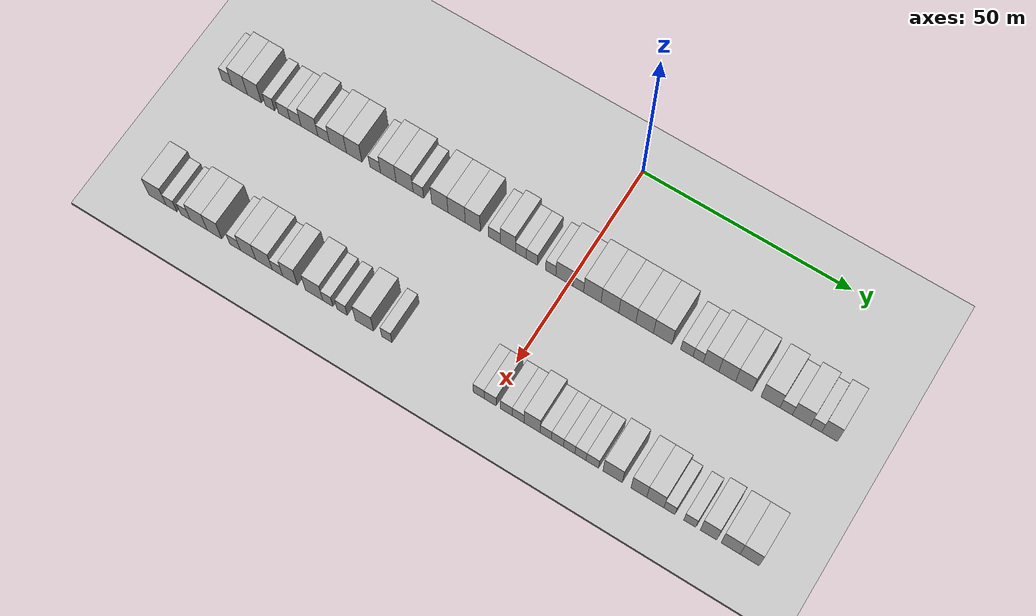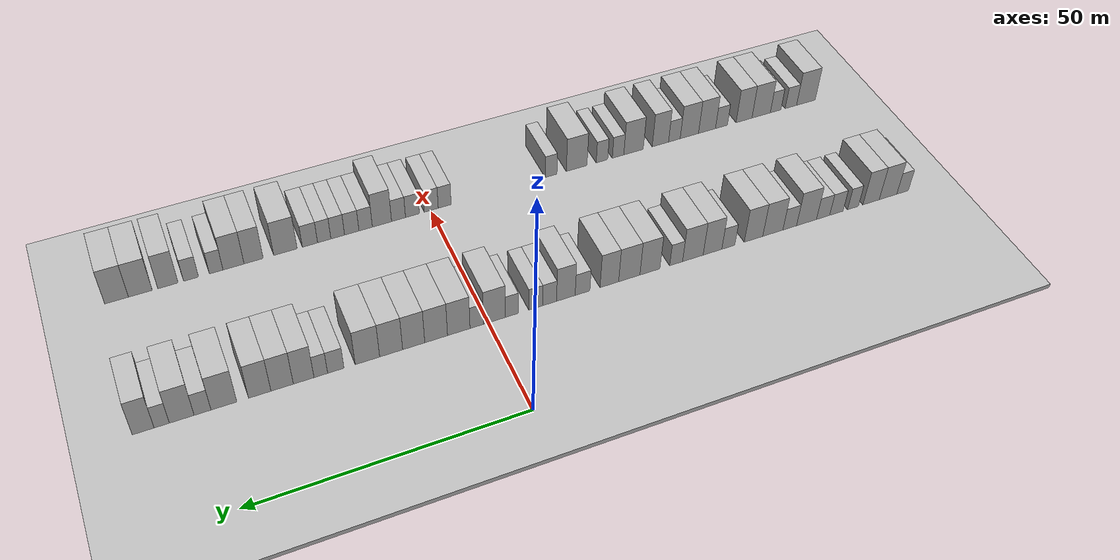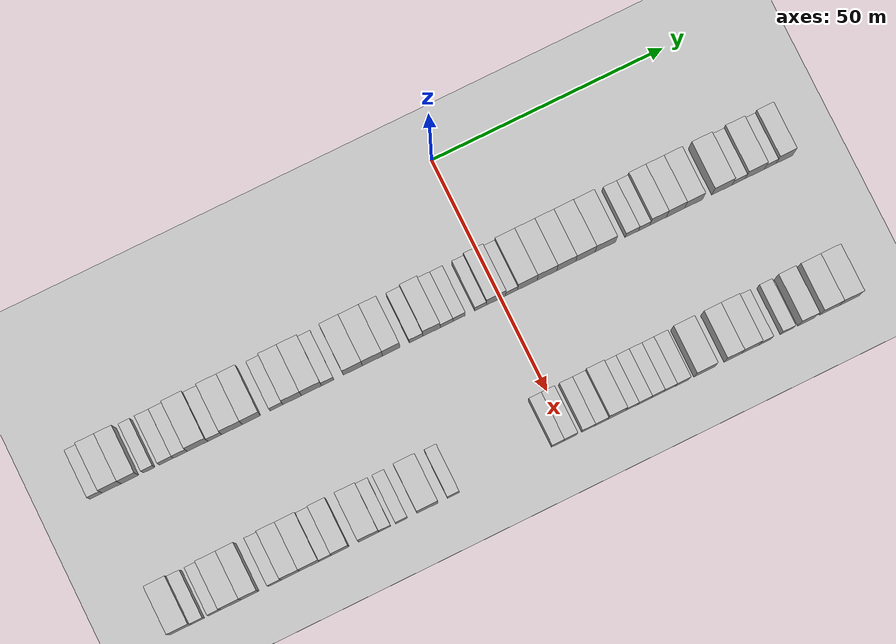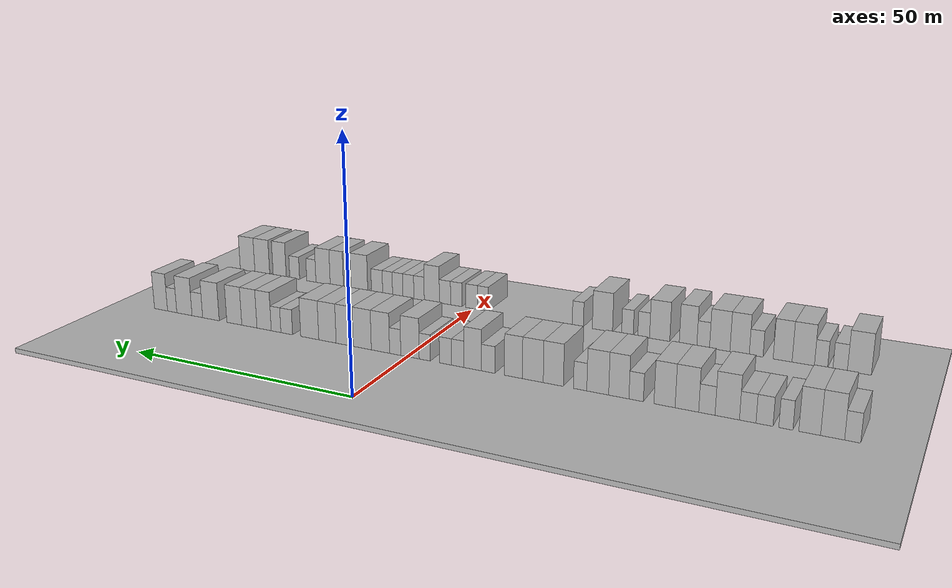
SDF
<sdf version="1.6">
 <world name="default">
  <include><name>ground_plane_1</name><uri>model://HANNAS_ground_plane</uri></include>
  <include>
   <name>ground_plane_2</name>
   <uri>model://HANNAS_ground_plane</uri>
   <pose>100 0 0  0 0 0</pose>
  </include>
  <model name="building_36">
   <static>1</static>
   <pose>25.0000 -86.0465 0 0.000000 0.000000 0.000000</pose>
   <link name="link">
    <pose>0 0 3.00 0 0 0</pose>
    <collision name="collision"><geometry><box><size>10.0000 2.6405 6.0000</size></box></geometry></collision>
    <visual name="visual">
     <cast_shadows>0</cast_shadows>
     <geometry><box><size>10.0000 2.6405 6.0000</size></box></geometry>
     <material>
      <script>
       <uri>model://HANNAS_wall/materials/scripts</uri>
       <uri>model://HANNAS_wall/materials/textures</uri>
       <name>vrc/HANNAS_wall</name>
      </script>
     </material>
    </visual>
   </link>
  </model>
  <model name="building_37">
   <static>1</static>
   <pose>25.0000 -82.7317 0 0.000000 0.000000 0.000000</pose>
   <link name="link">
    <pose>0 0 4.50 0 0 0</pose>
    <collision name="collision"><geometry><box><size>10.0000 3.9891 9.0000</size></box></geometry></collision>
    <visual name="visual">
     <cast_shadows>0</cast_shadows>
     <geometry><box><size>10.0000 3.9891 9.0000</size></box></geometry>
     <material>
      <script>
       <uri>model://HANNAS_wall/materials/scripts</uri>
       <uri>model://HANNAS_wall/materials/textures</uri>
       <name>vrc/HANNAS_wall</name>
      </script>
     </material>
    </visual>
   </link>
  </model>
  <model name="building_38">
   <static>1</static>
   <pose>25.0000 -78.8998 0 0.000000 0.000000 0.000000</pose>
   <link name="link">
    <pose>0 0 4.50 0 0 0</pose>
    <collision name="collision"><geometry><box><size>10.0000 3.6748 9.0000</size></box></geometry></collision>
    <visual name="visual">
     <cast_shadows>0</cast_shadows>
     <geometry><box><size>10.0000 3.6748 9.0000</size></box></geometry>
     <material>
      <script>
       <uri>model://HANNAS_wall/materials/scripts</uri>
       <uri>model://HANNAS_wall/materials/textures</uri>
       <name>vrc/HANNAS_wall</name>
      </script>
     </material>
    </visual>
   </link>
  </model>
  <model name="building_39">
   <static>1</static>
   <pose>25.0000 -74.8521 0 0.000000 0.000000 0.000000</pose>
   <link name="link">
    <pose>0 0 3.00 0 0 0</pose>
    <collision name="collision"><geometry><box><size>10.0000 2.4206 6.0000</size></box></geometry></collision>
    <visual name="visual">
     <cast_shadows>0</cast_shadows>
     <geometry><box><size>10.0000 2.4206 6.0000</size></box></geometry>
     <material>
      <script>
       <uri>model://HANNAS_wall/materials/scripts</uri>
       <uri>model://HANNAS_wall/materials/textures</uri>
       <name>vrc/HANNAS_wall</name>
      </script>
     </material>
    </visual>
   </link>
  </model>
  <model name="building_40">
   <static>1</static>
   <pose>25.0000 -71.1641 0 0.000000 0.000000 0.000000</pose>
   <link name="link">
    <pose>0 0 3.00 0 0 0</pose>
    <collision name="collision"><geometry><box><size>10.0000 2.9554 6.0000</size></box></geometry></collision>
    <visual name="visual">
     <cast_shadows>0</cast_shadows>
     <geometry><box><size>10.0000 2.9554 6.0000</size></box></geometry>
     <material>
      <script>
       <uri>model://HANNAS_wall/materials/scripts</uri>
       <uri>model://HANNAS_wall/materials/textures</uri>
       <name>vrc/HANNAS_wall</name>
      </script>
     </material>
    </visual>
   </link>
  </model>
  <model name="building_41">
   <static>1</static>
   <pose>25.0000 -68.2301 0 0.000000 0.000000 0.000000</pose>
   <link name="link">
    <pose>0 0 3.00 0 0 0</pose>
    <collision name="collision"><geometry><box><size>10.0000 2.9125 6.0000</size></box></geometry></collision>
    <visual name="visual">
     <cast_shadows>0</cast_shadows>
     <geometry><box><size>10.0000 2.9125 6.0000</size></box></geometry>
     <material>
      <script>
       <uri>model://HANNAS_wall/materials/scripts</uri>
       <uri>model://HANNAS_wall/materials/textures</uri>
       <name>vrc/HANNAS_wall</name>
      </script>
     </material>
    </visual>
   </link>
  </model>
  <model name="building_42">
   <static>1</static>
   <pose>25.0000 -64.6002 0 0.000000 0.000000 0.000000</pose>
   <link name="link">
    <pose>0 0 4.50 0 0 0</pose>
    <collision name="collision"><geometry><box><size>10.0000 4.3473 9.0000</size></box></geometry></collision>
    <visual name="visual">
     <cast_shadows>0</cast_shadows>
     <geometry><box><size>10.0000 4.3473 9.0000</size></box></geometry>
     <material>
      <script>
       <uri>model://HANNAS_wall/materials/scripts</uri>
       <uri>model://HANNAS_wall/materials/textures</uri>
       <name>vrc/HANNAS_wall</name>
      </script>
     </material>
    </visual>
   </link>
  </model>
  <model name="building_43">
   <static>1</static>
   <pose>25.0000 -60.9436 0 0.000000 0.000000 0.000000</pose>
   <link name="link">
    <pose>0 0 3.00 0 0 0</pose>
    <collision name="collision"><geometry><box><size>10.0000 2.9658 6.0000</size></box></geometry></collision>
    <visual name="visual">
     <cast_shadows>0</cast_shadows>
     <geometry><box><size>10.0000 2.9658 6.0000</size></box></geometry>
     <material>
      <script>
       <uri>model://HANNAS_wall/materials/scripts</uri>
       <uri>model://HANNAS_wall/materials/textures</uri>
       <name>vrc/HANNAS_wall</name>
      </script>
     </material>
    </visual>
   </link>
  </model>
  <model name="building_44">
   <static>1</static>
   <pose>25.0000 -57.2995 0 0.000000 0.000000 0.000000</pose>
   <link name="link">
    <pose>0 0 4.50 0 0 0</pose>
    <collision name="collision"><geometry><box><size>10.0000 4.3224 9.0000</size></box></geometry></collision>
    <visual name="visual">
     <cast_shadows>0</cast_shadows>
     <geometry><box><size>10.0000 4.3224 9.0000</size></box></geometry>
     <material>
      <script>
       <uri>model://HANNAS_wall/materials/scripts</uri>
       <uri>model://HANNAS_wall/materials/textures</uri>
       <name>vrc/HANNAS_wall</name>
      </script>
     </material>
    </visual>
   </link>
  </model>
  <model name="building_45">
   <static>1</static>
   <pose>25.0000 -53.1680 0 0.000000 0.000000 0.000000</pose>
   <link name="link">
    <pose>0 0 4.50 0 0 0</pose>
    <collision name="collision"><geometry><box><size>10.0000 3.9408 9.0000</size></box></geometry></collision>
    <visual name="visual">
     <cast_shadows>0</cast_shadows>
     <geometry><box><size>10.0000 3.9408 9.0000</size></box></geometry>
     <material>
      <script>
       <uri>model://HANNAS_wall/materials/scripts</uri>
       <uri>model://HANNAS_wall/materials/textures</uri>
       <name>vrc/HANNAS_wall</name>
      </script>
     </material>
    </visual>
   </link>
  </model>
  <model name="building_46">
   <static>1</static>
   <pose>25.0000 -47.8245 0 0.000000 0.000000 0.000000</pose>
   <link name="link">
    <pose>0 0 3.00 0 0 0</pose>
    <collision name="collision"><geometry><box><size>10.0000 2.7462 6.0000</size></box></geometry></collision>
    <visual name="visual">
     <cast_shadows>0</cast_shadows>
     <geometry><box><size>10.0000 2.7462 6.0000</size></box></geometry>
     <material>
      <script>
       <uri>model://HANNAS_wall/materials/scripts</uri>
       <uri>model://HANNAS_wall/materials/textures</uri>
       <name>vrc/HANNAS_wall</name>
      </script>
     </material>
    </visual>
   </link>
  </model>
  <model name="building_47">
   <static>1</static>
   <pose>25.0000 -44.4998 0 0.000000 0.000000 0.000000</pose>
   <link name="link">
    <pose>0 0 4.50 0 0 0</pose>
    <collision name="collision"><geometry><box><size>10.0000 3.9032 9.0000</size></box></geometry></collision>
    <visual name="visual">
     <cast_shadows>0</cast_shadows>
     <geometry><box><size>10.0000 3.9032 9.0000</size></box></geometry>
     <material>
      <script>
       <uri>model://HANNAS_wall/materials/scripts</uri>
       <uri>model://HANNAS_wall/materials/textures</uri>
       <name>vrc/HANNAS_wall</name>
      </script>
     </material>
    </visual>
   </link>
  </model>
  <model name="building_48">
   <static>1</static>
   <pose>25.0000 -40.4102 0 0.000000 0.000000 0.000000</pose>
   <link name="link">
    <pose>0 0 4.50 0 0 0</pose>
    <collision name="collision"><geometry><box><size>10.0000 4.2760 9.0000</size></box></geometry></collision>
    <visual name="visual">
     <cast_shadows>0</cast_shadows>
     <geometry><box><size>10.0000 4.2760 9.0000</size></box></geometry>
     <material>
      <script>
       <uri>model://HANNAS_wall/materials/scripts</uri>
       <uri>model://HANNAS_wall/materials/textures</uri>
       <name>vrc/HANNAS_wall</name>
      </script>
     </material>
    </visual>
   </link>
  </model>
  <model name="building_49">
   <static>1</static>
   <pose>25.0000 -36.9497 0 0.000000 0.000000 0.000000</pose>
   <link name="link">
    <pose>0 0 3.00 0 0 0</pose>
    <collision name="collision"><geometry><box><size>10.0000 2.6450 6.0000</size></box></geometry></collision>
    <visual name="visual">
     <cast_shadows>0</cast_shadows>
     <geometry><box><size>10.0000 2.6450 6.0000</size></box></geometry>
     <material>
      <script>
       <uri>model://HANNAS_wall/materials/scripts</uri>
       <uri>model://HANNAS_wall/materials/textures</uri>
       <name>vrc/HANNAS_wall</name>
      </script>
     </material>
    </visual>
   </link>
  </model>
  <model name="building_50">
   <static>1</static>
   <pose>25.0000 -31.5920 0 0.000000 0.000000 0.000000</pose>
   <link name="link">
    <pose>0 0 4.50 0 0 0</pose>
    <collision name="collision"><geometry><box><size>10.0000 4.0703 9.0000</size></box></geometry></collision>
    <visual name="visual">
     <cast_shadows>0</cast_shadows>
     <geometry><box><size>10.0000 4.0703 9.0000</size></box></geometry>
     <material>
      <script>
       <uri>model://HANNAS_wall/materials/scripts</uri>
       <uri>model://HANNAS_wall/materials/textures</uri>
       <name>vrc/HANNAS_wall</name>
      </script>
     </material>
    </visual>
   </link>
  </model>
  <model name="building_51">
   <static>1</static>
   <pose>25.0000 -27.4132 0 0.000000 0.000000 0.000000</pose>
   <link name="link">
    <pose>0 0 4.50 0 0 0</pose>
    <collision name="collision"><geometry><box><size>10.0000 4.2873 9.0000</size></box></geometry></collision>
    <visual name="visual">
     <cast_shadows>0</cast_shadows>
     <geometry><box><size>10.0000 4.2873 9.0000</size></box></geometry>
     <material>
      <script>
       <uri>model://HANNAS_wall/materials/scripts</uri>
       <uri>model://HANNAS_wall/materials/textures</uri>
       <name>vrc/HANNAS_wall</name>
      </script>
     </material>
    </visual>
   </link>
  </model>
  <model name="building_52">
   <static>1</static>
   <pose>25.0000 -23.4072 0 0.000000 0.000000 0.000000</pose>
   <link name="link">
    <pose>0 0 4.50 0 0 0</pose>
    <collision name="collision"><geometry><box><size>10.0000 3.7247 9.0000</size></box></geometry></collision>
    <visual name="visual">
     <cast_shadows>0</cast_shadows>
     <geometry><box><size>10.0000 3.7247 9.0000</size></box></geometry>
     <material>
      <script>
       <uri>model://HANNAS_wall/materials/scripts</uri>
       <uri>model://HANNAS_wall/materials/textures</uri>
       <name>vrc/HANNAS_wall</name>
      </script>
     </material>
    </visual>
   </link>
  </model>
  <model name="building_53">
   <static>1</static>
   <pose>25.0000 -18.0842 0 0.000000 0.000000 0.000000</pose>
   <link name="link">
    <pose>0 0 3.00 0 0 0</pose>
    <collision name="collision"><geometry><box><size>10.0000 2.9214 6.0000</size></box></geometry></collision>
    <visual name="visual">
     <cast_shadows>0</cast_shadows>
     <geometry><box><size>10.0000 2.9214 6.0000</size></box></geometry>
     <material>
      <script>
       <uri>model://HANNAS_wall/materials/scripts</uri>
       <uri>model://HANNAS_wall/materials/textures</uri>
       <name>vrc/HANNAS_wall</name>
      </script>
     </material>
    </visual>
   </link>
  </model>
  <model name="building_54">
   <static>1</static>
   <pose>25.0000 -14.7906 0 0.000000 0.000000 0.000000</pose>
   <link name="link">
    <pose>0 0 4.50 0 0 0</pose>
    <collision name="collision"><geometry><box><size>10.0000 3.6657 9.0000</size></box></geometry></collision>
    <visual name="visual">
     <cast_shadows>0</cast_shadows>
     <geometry><box><size>10.0000 3.6657 9.0000</size></box></geometry>
     <material>
      <script>
       <uri>model://HANNAS_wall/materials/scripts</uri>
       <uri>model://HANNAS_wall/materials/textures</uri>
       <name>vrc/HANNAS_wall</name>
      </script>
     </material>
    </visual>
   </link>
  </model>
  <model name="building_55">
   <static>1</static>
   <pose>25.0000 -11.6053 0 0.000000 0.000000 0.000000</pose>
   <link name="link">
    <pose>0 0 3.00 0 0 0</pose>
    <collision name="collision"><geometry><box><size>10.0000 2.7048 6.0000</size></box></geometry></collision>
    <visual name="visual">
     <cast_shadows>0</cast_shadows>
     <geometry><box><size>10.0000 2.7048 6.0000</size></box></geometry>
     <material>
      <script>
       <uri>model://HANNAS_wall/materials/scripts</uri>
       <uri>model://HANNAS_wall/materials/textures</uri>
       <name>vrc/HANNAS_wall</name>
      </script>
     </material>
    </visual>
   </link>
  </model>
  <model name="building_56">
   <static>1</static>
   <pose>25.0000 -8.9173 0 0.000000 0.000000 0.000000</pose>
   <link name="link">
    <pose>0 0 3.00 0 0 0</pose>
    <collision name="collision"><geometry><box><size>10.0000 2.6713 6.0000</size></box></geometry></collision>
    <visual name="visual">
     <cast_shadows>0</cast_shadows>
     <geometry><box><size>10.0000 2.6713 6.0000</size></box></geometry>
     <material>
      <script>
       <uri>model://HANNAS_wall/materials/scripts</uri>
       <uri>model://HANNAS_wall/materials/textures</uri>
       <name>vrc/HANNAS_wall</name>
      </script>
     </material>
    </visual>
   </link>
  </model>
  <model name="building_57">
   <static>1</static>
   <pose>25.0000 -4.3405 0 0.000000 0.000000 0.000000</pose>
   <link name="link">
    <pose>0 0 3.00 0 0 0</pose>
    <collision name="collision"><geometry><box><size>10.0000 2.4823 6.0000</size></box></geometry></collision>
    <visual name="visual">
     <cast_shadows>0</cast_shadows>
     <geometry><box><size>10.0000 2.4823 6.0000</size></box></geometry>
     <material>
      <script>
       <uri>model://HANNAS_wall/materials/scripts</uri>
       <uri>model://HANNAS_wall/materials/textures</uri>
       <name>vrc/HANNAS_wall</name>
      </script>
     </material>
    </visual>
   </link>
  </model>
  <model name="building_58">
   <static>1</static>
   <pose>25.0000 -1.0252 0 0.000000 0.000000 0.000000</pose>
   <link name="link">
    <pose>0 0 4.50 0 0 0</pose>
    <collision name="collision"><geometry><box><size>10.0000 4.1484 9.0000</size></box></geometry></collision>
    <visual name="visual">
     <cast_shadows>0</cast_shadows>
     <geometry><box><size>10.0000 4.1484 9.0000</size></box></geometry>
     <material>
      <script>
       <uri>model://HANNAS_wall/materials/scripts</uri>
       <uri>model://HANNAS_wall/materials/textures</uri>
       <name>vrc/HANNAS_wall</name>
      </script>
     </material>
    </visual>
   </link>
  </model>
  <model name="building_59">
   <static>1</static>
   <pose>25.0000 2.3257 0 0.000000 0.000000 0.000000</pose>
   <link name="link">
    <pose>0 0 3.00 0 0 0</pose>
    <collision name="collision"><geometry><box><size>10.0000 2.5534 6.0000</size></box></geometry></collision>
    <visual name="visual">
     <cast_shadows>0</cast_shadows>
     <geometry><box><size>10.0000 2.5534 6.0000</size></box></geometry>
     <material>
      <script>
       <uri>model://HANNAS_wall/materials/scripts</uri>
       <uri>model://HANNAS_wall/materials/textures</uri>
       <name>vrc/HANNAS_wall</name>
      </script>
     </material>
    </visual>
   </link>
  </model>
  <model name="building_60">
   <static>1</static>
   <pose>25.0000 5.7046 0 0.000000 0.000000 0.000000</pose>
   <link name="link">
    <pose>0 0 4.50 0 0 0</pose>
    <collision name="collision"><geometry><box><size>10.0000 4.2045 9.0000</size></box></geometry></collision>
    <visual name="visual">
     <cast_shadows>0</cast_shadows>
     <geometry><box><size>10.0000 4.2045 9.0000</size></box></geometry>
     <material>
      <script>
       <uri>model://HANNAS_wall/materials/scripts</uri>
       <uri>model://HANNAS_wall/materials/textures</uri>
       <name>vrc/HANNAS_wall</name>
      </script>
     </material>
    </visual>
   </link>
  </model>
  <model name="building_61">
   <static>1</static>
   <pose>25.0000 9.9166 0 0.000000 0.000000 0.000000</pose>
   <link name="link">
    <pose>0 0 4.50 0 0 0</pose>
    <collision name="collision"><geometry><box><size>10.0000 4.2195 9.0000</size></box></geometry></collision>
    <visual name="visual">
     <cast_shadows>0</cast_shadows>
     <geometry><box><size>10.0000 4.2195 9.0000</size></box></geometry>
     <material>
      <script>
       <uri>model://HANNAS_wall/materials/scripts</uri>
       <uri>model://HANNAS_wall/materials/textures</uri>
       <name>vrc/HANNAS_wall</name>
      </script>
     </material>
    </visual>
   </link>
  </model>
  <model name="building_62">
   <static>1</static>
   <pose>25.0000 14.0541 0 0.000000 0.000000 0.000000</pose>
   <link name="link">
    <pose>0 0 4.50 0 0 0</pose>
    <collision name="collision"><geometry><box><size>10.0000 4.0553 9.0000</size></box></geometry></collision>
    <visual name="visual">
     <cast_shadows>0</cast_shadows>
     <geometry><box><size>10.0000 4.0553 9.0000</size></box></geometry>
     <material>
      <script>
       <uri>model://HANNAS_wall/materials/scripts</uri>
       <uri>model://HANNAS_wall/materials/textures</uri>
       <name>vrc/HANNAS_wall</name>
      </script>
     </material>
    </visual>
   </link>
  </model>
  <model name="building_63">
   <static>1</static>
   <pose>25.0000 18.1746 0 0.000000 0.000000 0.000000</pose>
   <link name="link">
    <pose>0 0 4.50 0 0 0</pose>
    <collision name="collision"><geometry><box><size>10.0000 4.1857 9.0000</size></box></geometry></collision>
    <visual name="visual">
     <cast_shadows>0</cast_shadows>
     <geometry><box><size>10.0000 4.1857 9.0000</size></box></geometry>
     <material>
      <script>
       <uri>model://HANNAS_wall/materials/scripts</uri>
       <uri>model://HANNAS_wall/materials/textures</uri>
       <name>vrc/HANNAS_wall</name>
      </script>
     </material>
    </visual>
   </link>
  </model>
  <model name="building_64">
   <static>1</static>
   <pose>25.0000 22.4726 0 0.000000 0.000000 0.000000</pose>
   <link name="link">
    <pose>0 0 4.50 0 0 0</pose>
    <collision name="collision"><geometry><box><size>10.0000 4.4105 9.0000</size></box></geometry></collision>
    <visual name="visual">
     <cast_shadows>0</cast_shadows>
     <geometry><box><size>10.0000 4.4105 9.0000</size></box></geometry>
     <material>
      <script>
       <uri>model://HANNAS_wall/materials/scripts</uri>
       <uri>model://HANNAS_wall/materials/textures</uri>
       <name>vrc/HANNAS_wall</name>
      </script>
     </material>
    </visual>
   </link>
  </model>
  <model name="building_65">
   <static>1</static>
   <pose>25.0000 28.1322 0 0.000000 0.000000 0.000000</pose>
   <link name="link">
    <pose>0 0 3.00 0 0 0</pose>
    <collision name="collision"><geometry><box><size>10.0000 2.9087 6.0000</size></box></geometry></collision>
    <visual name="visual">
     <cast_shadows>0</cast_shadows>
     <geometry><box><size>10.0000 2.9087 6.0000</size></box></geometry>
     <material>
      <script>
       <uri>model://HANNAS_wall/materials/scripts</uri>
       <uri>model://HANNAS_wall/materials/textures</uri>
       <name>vrc/HANNAS_wall</name>
      </script>
     </material>
    </visual>
   </link>
  </model>
  <model name="building_66">
   <static>1</static>
   <pose>25.0000 30.7936 0 0.000000 0.000000 0.000000</pose>
   <link name="link">
    <pose>0 0 3.00 0 0 0</pose>
    <collision name="collision"><geometry><box><size>10.0000 2.4141 6.0000</size></box></geometry></collision>
    <visual name="visual">
     <cast_shadows>0</cast_shadows>
     <geometry><box><size>10.0000 2.4141 6.0000</size></box></geometry>
     <material>
      <script>
       <uri>model://HANNAS_wall/materials/scripts</uri>
       <uri>model://HANNAS_wall/materials/textures</uri>
       <name>vrc/HANNAS_wall</name>
      </script>
     </material>
    </visual>
   </link>
  </model>
  <model name="building_67">
   <static>1</static>
   <pose>25.0000 33.8105 0 0.000000 0.000000 0.000000</pose>
   <link name="link">
    <pose>0 0 4.50 0 0 0</pose>
    <collision name="collision"><geometry><box><size>10.0000 3.6196 9.0000</size></box></geometry></collision>
    <visual name="visual">
     <cast_shadows>0</cast_shadows>
     <geometry><box><size>10.0000 3.6196 9.0000</size></box></geometry>
     <material>
      <script>
       <uri>model://HANNAS_wall/materials/scripts</uri>
       <uri>model://HANNAS_wall/materials/textures</uri>
       <name>vrc/HANNAS_wall</name>
      </script>
     </material>
    </visual>
   </link>
  </model>
  <model name="building_68">
   <static>1</static>
   <pose>25.0000 37.5687 0 0.000000 0.000000 0.000000</pose>
   <link name="link">
    <pose>0 0 4.50 0 0 0</pose>
    <collision name="collision"><geometry><box><size>10.0000 3.8968 9.0000</size></box></geometry></collision>
    <visual name="visual">
     <cast_shadows>0</cast_shadows>
     <geometry><box><size>10.0000 3.8968 9.0000</size></box></geometry>
     <material>
      <script>
       <uri>model://HANNAS_wall/materials/scripts</uri>
       <uri>model://HANNAS_wall/materials/textures</uri>
       <name>vrc/HANNAS_wall</name>
      </script>
     </material>
    </visual>
   </link>
  </model>
  <model name="building_69">
   <static>1</static>
   <pose>25.0000 41.4517 0 0.000000 0.000000 0.000000</pose>
   <link name="link">
    <pose>0 0 4.50 0 0 0</pose>
    <collision name="collision"><geometry><box><size>10.0000 3.8693 9.0000</size></box></geometry></collision>
    <visual name="visual">
     <cast_shadows>0</cast_shadows>
     <geometry><box><size>10.0000 3.8693 9.0000</size></box></geometry>
     <material>
      <script>
       <uri>model://HANNAS_wall/materials/scripts</uri>
       <uri>model://HANNAS_wall/materials/textures</uri>
       <name>vrc/HANNAS_wall</name>
      </script>
     </material>
    </visual>
   </link>
  </model>
  <model name="building_70">
   <static>1</static>
   <pose>25.0000 47.5802 0 0.000000 0.000000 0.000000</pose>
   <link name="link">
    <pose>0 0 4.50 0 0 0</pose>
    <collision name="collision"><geometry><box><size>10.0000 4.3878 9.0000</size></box></geometry></collision>
    <visual name="visual">
     <cast_shadows>0</cast_shadows>
     <geometry><box><size>10.0000 4.3878 9.0000</size></box></geometry>
     <material>
      <script>
       <uri>model://HANNAS_wall/materials/scripts</uri>
       <uri>model://HANNAS_wall/materials/textures</uri>
       <name>vrc/HANNAS_wall</name>
      </script>
     </material>
    </visual>
   </link>
  </model>
  <model name="building_71">
   <static>1</static>
   <pose>25.0000 51.1957 0 0.000000 0.000000 0.000000</pose>
   <link name="link">
    <pose>0 0 3.00 0 0 0</pose>
    <collision name="collision"><geometry><box><size>10.0000 2.8430 6.0000</size></box></geometry></collision>
    <visual name="visual">
     <cast_shadows>0</cast_shadows>
     <geometry><box><size>10.0000 2.8430 6.0000</size></box></geometry>
     <material>
      <script>
       <uri>model://HANNAS_wall/materials/scripts</uri>
       <uri>model://HANNAS_wall/materials/textures</uri>
       <name>vrc/HANNAS_wall</name>
      </script>
     </material>
    </visual>
   </link>
  </model>
  <model name="building_72">
   <static>1</static>
   <pose>25.0000 54.6830 0 0.000000 0.000000 0.000000</pose>
   <link name="link">
    <pose>0 0 4.50 0 0 0</pose>
    <collision name="collision"><geometry><box><size>10.0000 4.1315 9.0000</size></box></geometry></collision>
    <visual name="visual">
     <cast_shadows>0</cast_shadows>
     <geometry><box><size>10.0000 4.1315 9.0000</size></box></geometry>
     <material>
      <script>
       <uri>model://HANNAS_wall/materials/scripts</uri>
       <uri>model://HANNAS_wall/materials/textures</uri>
       <name>vrc/HANNAS_wall</name>
      </script>
     </material>
    </visual>
   </link>
  </model>
  <model name="building_73">
   <static>1</static>
   <pose>25.0000 58.0128 0 0.000000 0.000000 0.000000</pose>
   <link name="link">
    <pose>0 0 3.00 0 0 0</pose>
    <collision name="collision"><geometry><box><size>10.0000 2.5282 6.0000</size></box></geometry></collision>
    <visual name="visual">
     <cast_shadows>0</cast_shadows>
     <geometry><box><size>10.0000 2.5282 6.0000</size></box></geometry>
     <material>
      <script>
       <uri>model://HANNAS_wall/materials/scripts</uri>
       <uri>model://HANNAS_wall/materials/textures</uri>
       <name>vrc/HANNAS_wall</name>
      </script>
     </material>
    </visual>
   </link>
  </model>
  <model name="building_74">
   <static>1</static>
   <pose>25.0000 61.0770 0 0.000000 0.000000 0.000000</pose>
   <link name="link">
    <pose>0 0 4.50 0 0 0</pose>
    <collision name="collision"><geometry><box><size>10.0000 3.6003 9.0000</size></box></geometry></collision>
    <visual name="visual">
     <cast_shadows>0</cast_shadows>
     <geometry><box><size>10.0000 3.6003 9.0000</size></box></geometry>
     <material>
      <script>
       <uri>model://HANNAS_wall/materials/scripts</uri>
       <uri>model://HANNAS_wall/materials/textures</uri>
       <name>vrc/HANNAS_wall</name>
      </script>
     </material>
    </visual>
   </link>
  </model>
  <model name="building_149">
   <static>1</static>
   <pose>55.0000 -82.5081 0 0.000000 0.000000 0.000000</pose>
   <link name="link">
    <pose>0 0 4.50 0 0 0</pose>
    <collision name="collision"><geometry><box><size>10.0000 4.4641 9.0000</size></box></geometry></collision>
    <visual name="visual">
     <cast_shadows>0</cast_shadows>
     <geometry><box><size>10.0000 4.4641 9.0000</size></box></geometry>
     <material>
      <script>
       <uri>model://HANNAS_wall/materials/scripts</uri>
       <uri>model://HANNAS_wall/materials/textures</uri>
       <name>vrc/HANNAS_wall</name>
      </script>
     </material>
    </visual>
   </link>
  </model>
  <model name="building_150">
   <static>1</static>
   <pose>55.0000 -78.9173 0 0.000000 0.000000 0.000000</pose>
   <link name="link">
    <pose>0 0 3.00 0 0 0</pose>
    <collision name="collision"><geometry><box><size>10.0000 2.7174 6.0000</size></box></geometry></collision>
    <visual name="visual">
     <cast_shadows>0</cast_shadows>
     <geometry><box><size>10.0000 2.7174 6.0000</size></box></geometry>
     <material>
      <script>
       <uri>model://HANNAS_wall/materials/scripts</uri>
       <uri>model://HANNAS_wall/materials/textures</uri>
       <name>vrc/HANNAS_wall</name>
      </script>
     </material>
    </visual>
   </link>
  </model>
  <model name="building_151">
   <static>1</static>
   <pose>55.0000 -75.3053 0 0.000000 0.000000 0.000000</pose>
   <link name="link">
    <pose>0 0 3.00 0 0 0</pose>
    <collision name="collision"><geometry><box><size>10.0000 2.5065 6.0000</size></box></geometry></collision>
    <visual name="visual">
     <cast_shadows>0</cast_shadows>
     <geometry><box><size>10.0000 2.5065 6.0000</size></box></geometry>
     <material>
      <script>
       <uri>model://HANNAS_wall/materials/scripts</uri>
       <uri>model://HANNAS_wall/materials/textures</uri>
       <name>vrc/HANNAS_wall</name>
      </script>
     </material>
    </visual>
   </link>
  </model>
  <model name="building_152">
   <static>1</static>
   <pose>55.0000 -71.8989 0 0.000000 0.000000 0.000000</pose>
   <link name="link">
    <pose>0 0 4.50 0 0 0</pose>
    <collision name="collision"><geometry><box><size>10.0000 4.3063 9.0000</size></box></geometry></collision>
    <visual name="visual">
     <cast_shadows>0</cast_shadows>
     <geometry><box><size>10.0000 4.3063 9.0000</size></box></geometry>
     <material>
      <script>
       <uri>model://HANNAS_wall/materials/scripts</uri>
       <uri>model://HANNAS_wall/materials/textures</uri>
       <name>vrc/HANNAS_wall</name>
      </script>
     </material>
    </visual>
   </link>
  </model>
  <model name="building_153">
   <static>1</static>
   <pose>55.0000 -67.8961 0 0.000000 0.000000 0.000000</pose>
   <link name="link">
    <pose>0 0 4.50 0 0 0</pose>
    <collision name="collision"><geometry><box><size>10.0000 3.6994 9.0000</size></box></geometry></collision>
    <visual name="visual">
     <cast_shadows>0</cast_shadows>
     <geometry><box><size>10.0000 3.6994 9.0000</size></box></geometry>
     <material>
      <script>
       <uri>model://HANNAS_wall/materials/scripts</uri>
       <uri>model://HANNAS_wall/materials/textures</uri>
       <name>vrc/HANNAS_wall</name>
      </script>
     </material>
    </visual>
   </link>
  </model>
  <model name="building_154">
   <static>1</static>
   <pose>55.0000 -62.6760 0 0.000000 0.000000 0.000000</pose>
   <link name="link">
    <pose>0 0 3.00 0 0 0</pose>
    <collision name="collision"><geometry><box><size>10.0000 2.7408 6.0000</size></box></geometry></collision>
    <visual name="visual">
     <cast_shadows>0</cast_shadows>
     <geometry><box><size>10.0000 2.7408 6.0000</size></box></geometry>
     <material>
      <script>
       <uri>model://HANNAS_wall/materials/scripts</uri>
       <uri>model://HANNAS_wall/materials/textures</uri>
       <name>vrc/HANNAS_wall</name>
      </script>
     </material>
    </visual>
   </link>
  </model>
  <model name="building_155">
   <static>1</static>
   <pose>55.0000 -59.3603 0 0.000000 0.000000 0.000000</pose>
   <link name="link">
    <pose>0 0 4.50 0 0 0</pose>
    <collision name="collision"><geometry><box><size>10.0000 3.8905 9.0000</size></box></geometry></collision>
    <visual name="visual">
     <cast_shadows>0</cast_shadows>
     <geometry><box><size>10.0000 3.8905 9.0000</size></box></geometry>
     <material>
      <script>
       <uri>model://HANNAS_wall/materials/scripts</uri>
       <uri>model://HANNAS_wall/materials/textures</uri>
       <name>vrc/HANNAS_wall</name>
      </script>
     </material>
    </visual>
   </link>
  </model>
  <model name="building_156">
   <static>1</static>
   <pose>55.0000 -55.3364 0 0.000000 0.000000 0.000000</pose>
   <link name="link">
    <pose>0 0 4.50 0 0 0</pose>
    <collision name="collision"><geometry><box><size>10.0000 4.1573 9.0000</size></box></geometry></collision>
    <visual name="visual">
     <cast_shadows>0</cast_shadows>
     <geometry><box><size>10.0000 4.1573 9.0000</size></box></geometry>
     <material>
      <script>
       <uri>model://HANNAS_wall/materials/scripts</uri>
       <uri>model://HANNAS_wall/materials/textures</uri>
       <name>vrc/HANNAS_wall</name>
      </script>
     </material>
    </visual>
   </link>
  </model>
  <model name="building_157">
   <static>1</static>
   <pose>55.0000 -51.9467 0 0.000000 0.000000 0.000000</pose>
   <link name="link">
    <pose>0 0 3.00 0 0 0</pose>
    <collision name="collision"><geometry><box><size>10.0000 2.6221 6.0000</size></box></geometry></collision>
    <visual name="visual">
     <cast_shadows>0</cast_shadows>
     <geometry><box><size>10.0000 2.6221 6.0000</size></box></geometry>
     <material>
      <script>
       <uri>model://HANNAS_wall/materials/scripts</uri>
       <uri>model://HANNAS_wall/materials/textures</uri>
       <name>vrc/HANNAS_wall</name>
      </script>
     </material>
    </visual>
   </link>
  </model>
  <model name="building_158">
   <static>1</static>
   <pose>55.0000 -48.8045 0 0.000000 0.000000 0.000000</pose>
   <link name="link">
    <pose>0 0 4.50 0 0 0</pose>
    <collision name="collision"><geometry><box><size>10.0000 3.6623 9.0000</size></box></geometry></collision>
    <visual name="visual">
     <cast_shadows>0</cast_shadows>
     <geometry><box><size>10.0000 3.6623 9.0000</size></box></geometry>
     <material>
      <script>
       <uri>model://HANNAS_wall/materials/scripts</uri>
       <uri>model://HANNAS_wall/materials/textures</uri>
       <name>vrc/HANNAS_wall</name>
      </script>
     </material>
    </visual>
   </link>
  </model>
  <model name="building_159">
   <static>1</static>
   <pose>55.0000 -42.8194 0 0.000000 0.000000 0.000000</pose>
   <link name="link">
    <pose>0 0 4.50 0 0 0</pose>
    <collision name="collision"><geometry><box><size>10.0000 4.3080 9.0000</size></box></geometry></collision>
    <visual name="visual">
     <cast_shadows>0</cast_shadows>
     <geometry><box><size>10.0000 4.3080 9.0000</size></box></geometry>
     <material>
      <script>
       <uri>model://HANNAS_wall/materials/scripts</uri>
       <uri>model://HANNAS_wall/materials/textures</uri>
       <name>vrc/HANNAS_wall</name>
      </script>
     </material>
    </visual>
   </link>
  </model>
  <model name="building_160">
   <static>1</static>
   <pose>55.0000 -39.4052 0 0.000000 0.000000 0.000000</pose>
   <link name="link">
    <pose>0 0 3.00 0 0 0</pose>
    <collision name="collision"><geometry><box><size>10.0000 2.5203 6.0000</size></box></geometry></collision>
    <visual name="visual">
     <cast_shadows>0</cast_shadows>
     <geometry><box><size>10.0000 2.5203 6.0000</size></box></geometry>
     <material>
      <script>
       <uri>model://HANNAS_wall/materials/scripts</uri>
       <uri>model://HANNAS_wall/materials/textures</uri>
       <name>vrc/HANNAS_wall</name>
      </script>
     </material>
    </visual>
   </link>
  </model>
  <model name="building_161">
   <static>1</static>
   <pose>55.0000 -35.8841 0 0.000000 0.000000 0.000000</pose>
   <link name="link">
    <pose>0 0 3.00 0 0 0</pose>
    <collision name="collision"><geometry><box><size>10.0000 2.5219 6.0000</size></box></geometry></collision>
    <visual name="visual">
     <cast_shadows>0</cast_shadows>
     <geometry><box><size>10.0000 2.5219 6.0000</size></box></geometry>
     <material>
      <script>
       <uri>model://HANNAS_wall/materials/scripts</uri>
       <uri>model://HANNAS_wall/materials/textures</uri>
       <name>vrc/HANNAS_wall</name>
      </script>
     </material>
    </visual>
   </link>
  </model>
  <model name="building_162">
   <static>1</static>
   <pose>55.0000 -30.3880 0 0.000000 0.000000 0.000000</pose>
   <link name="link">
    <pose>0 0 4.50 0 0 0</pose>
    <collision name="collision"><geometry><box><size>10.0000 4.4705 9.0000</size></box></geometry></collision>
    <visual name="visual">
     <cast_shadows>0</cast_shadows>
     <geometry><box><size>10.0000 4.4705 9.0000</size></box></geometry>
     <material>
      <script>
       <uri>model://HANNAS_wall/materials/scripts</uri>
       <uri>model://HANNAS_wall/materials/textures</uri>
       <name>vrc/HANNAS_wall</name>
      </script>
     </material>
    </visual>
   </link>
  </model>
  <model name="building_163">
   <static>1</static>
   <pose>55.0000 -24.8953 0 0.000000 0.000000 0.000000</pose>
   <link name="link">
    <pose>0 0 3.00 0 0 0</pose>
    <collision name="collision"><geometry><box><size>10.0000 2.5149 6.0000</size></box></geometry></collision>
    <visual name="visual">
     <cast_shadows>0</cast_shadows>
     <geometry><box><size>10.0000 2.5149 6.0000</size></box></geometry>
     <material>
      <script>
       <uri>model://HANNAS_wall/materials/scripts</uri>
       <uri>model://HANNAS_wall/materials/textures</uri>
       <name>vrc/HANNAS_wall</name>
      </script>
     </material>
    </visual>
   </link>
  </model>
  <model name="building_164">
   <static>1</static>
   <pose>55.0000 -2.6984 0 0.000000 0.000000 0.000000</pose>
   <link name="link">
    <pose>0 0 3.00 0 0 0</pose>
    <collision name="collision"><geometry><box><size>10.0000 2.6262 6.0000</size></box></geometry></collision>
    <visual name="visual">
     <cast_shadows>0</cast_shadows>
     <geometry><box><size>10.0000 2.6262 6.0000</size></box></geometry>
     <material>
      <script>
       <uri>model://HANNAS_wall/materials/scripts</uri>
       <uri>model://HANNAS_wall/materials/textures</uri>
       <name>vrc/HANNAS_wall</name>
      </script>
     </material>
    </visual>
   </link>
  </model>
  <model name="building_165">
   <static>1</static>
   <pose>55.0000 0.0262 0 0.000000 0.000000 0.000000</pose>
   <link name="link">
    <pose>0 0 3.00 0 0 0</pose>
    <collision name="collision"><geometry><box><size>10.0000 2.8230 6.0000</size></box></geometry></collision>
    <visual name="visual">
     <cast_shadows>0</cast_shadows>
     <geometry><box><size>10.0000 2.8230 6.0000</size></box></geometry>
     <material>
      <script>
       <uri>model://HANNAS_wall/materials/scripts</uri>
       <uri>model://HANNAS_wall/materials/textures</uri>
       <name>vrc/HANNAS_wall</name>
      </script>
     </material>
    </visual>
   </link>
  </model>
  <model name="building_166">
   <static>1</static>
   <pose>55.0000 3.8326 0 0.000000 0.000000 0.000000</pose>
   <link name="link">
    <pose>0 0 3.00 0 0 0</pose>
    <collision name="collision"><geometry><box><size>10.0000 2.7898 6.0000</size></box></geometry></collision>
    <visual name="visual">
     <cast_shadows>0</cast_shadows>
     <geometry><box><size>10.0000 2.7898 6.0000</size></box></geometry>
     <material>
      <script>
       <uri>model://HANNAS_wall/materials/scripts</uri>
       <uri>model://HANNAS_wall/materials/textures</uri>
       <name>vrc/HANNAS_wall</name>
      </script>
     </material>
    </visual>
   </link>
  </model>
  <model name="building_167">
   <static>1</static>
   <pose>55.0000 6.6201 0 0.000000 0.000000 0.000000</pose>
   <link name="link">
    <pose>0 0 3.00 0 0 0</pose>
    <collision name="collision"><geometry><box><size>10.0000 2.7852 6.0000</size></box></geometry></collision>
    <visual name="visual">
     <cast_shadows>0</cast_shadows>
     <geometry><box><size>10.0000 2.7852 6.0000</size></box></geometry>
     <material>
      <script>
       <uri>model://HANNAS_wall/materials/scripts</uri>
       <uri>model://HANNAS_wall/materials/textures</uri>
       <name>vrc/HANNAS_wall</name>
      </script>
     </material>
    </visual>
   </link>
  </model>
  <model name="building_168">
   <static>1</static>
   <pose>55.0000 9.9179 0 0.000000 0.000000 0.000000</pose>
   <link name="link">
    <pose>0 0 4.50 0 0 0</pose>
    <collision name="collision"><geometry><box><size>10.0000 3.8105 9.0000</size></box></geometry></collision>
    <visual name="visual">
     <cast_shadows>0</cast_shadows>
     <geometry><box><size>10.0000 3.8105 9.0000</size></box></geometry>
     <material>
      <script>
       <uri>model://HANNAS_wall/materials/scripts</uri>
       <uri>model://HANNAS_wall/materials/textures</uri>
       <name>vrc/HANNAS_wall</name>
      </script>
     </material>
    </visual>
   </link>
  </model>
  <model name="building_169">
   <static>1</static>
   <pose>55.0000 13.1445 0 0.000000 0.000000 0.000000</pose>
   <link name="link">
    <pose>0 0 3.00 0 0 0</pose>
    <collision name="collision"><geometry><box><size>10.0000 2.6428 6.0000</size></box></geometry></collision>
    <visual name="visual">
     <cast_shadows>0</cast_shadows>
     <geometry><box><size>10.0000 2.6428 6.0000</size></box></geometry>
     <material>
      <script>
       <uri>model://HANNAS_wall/materials/scripts</uri>
       <uri>model://HANNAS_wall/materials/textures</uri>
       <name>vrc/HANNAS_wall</name>
      </script>
     </material>
    </visual>
   </link>
  </model>
  <model name="building_170">
   <static>1</static>
   <pose>55.0000 15.8795 0 0.000000 0.000000 0.000000</pose>
   <link name="link">
    <pose>0 0 3.00 0 0 0</pose>
    <collision name="collision"><geometry><box><size>10.0000 2.8272 6.0000</size></box></geometry></collision>
    <visual name="visual">
     <cast_shadows>0</cast_shadows>
     <geometry><box><size>10.0000 2.8272 6.0000</size></box></geometry>
     <material>
      <script>
       <uri>model://HANNAS_wall/materials/scripts</uri>
       <uri>model://HANNAS_wall/materials/textures</uri>
       <name>vrc/HANNAS_wall</name>
      </script>
     </material>
    </visual>
   </link>
  </model>
  <model name="building_171">
   <static>1</static>
   <pose>55.0000 18.6245 0 0.000000 0.000000 0.000000</pose>
   <link name="link">
    <pose>0 0 3.00 0 0 0</pose>
    <collision name="collision"><geometry><box><size>10.0000 2.6628 6.0000</size></box></geometry></collision>
    <visual name="visual">
     <cast_shadows>0</cast_shadows>
     <geometry><box><size>10.0000 2.6628 6.0000</size></box></geometry>
     <material>
      <script>
       <uri>model://HANNAS_wall/materials/scripts</uri>
       <uri>model://HANNAS_wall/materials/textures</uri>
       <name>vrc/HANNAS_wall</name>
      </script>
     </material>
    </visual>
   </link>
  </model>
  <model name="building_172">
   <static>1</static>
   <pose>55.0000 21.2474 0 0.000000 0.000000 0.000000</pose>
   <link name="link">
    <pose>0 0 3.00 0 0 0</pose>
    <collision name="collision"><geometry><box><size>10.0000 2.5830 6.0000</size></box></geometry></collision>
    <visual name="visual">
     <cast_shadows>0</cast_shadows>
     <geometry><box><size>10.0000 2.5830 6.0000</size></box></geometry>
     <material>
      <script>
       <uri>model://HANNAS_wall/materials/scripts</uri>
       <uri>model://HANNAS_wall/materials/textures</uri>
       <name>vrc/HANNAS_wall</name>
      </script>
     </material>
    </visual>
   </link>
  </model>
  <model name="building_173">
   <static>1</static>
   <pose>55.0000 24.0074 0 0.000000 0.000000 0.000000</pose>
   <link name="link">
    <pose>0 0 3.00 0 0 0</pose>
    <collision name="collision"><geometry><box><size>10.0000 2.9371 6.0000</size></box></geometry></collision>
    <visual name="visual">
     <cast_shadows>0</cast_shadows>
     <geometry><box><size>10.0000 2.9371 6.0000</size></box></geometry>
     <material>
      <script>
       <uri>model://HANNAS_wall/materials/scripts</uri>
       <uri>model://HANNAS_wall/materials/textures</uri>
       <name>vrc/HANNAS_wall</name>
      </script>
     </material>
    </visual>
   </link>
  </model>
  <model name="building_174">
   <static>1</static>
   <pose>55.0000 28.7117 0 0.000000 0.000000 0.000000</pose>
   <link name="link">
    <pose>0 0 4.50 0 0 0</pose>
    <collision name="collision"><geometry><box><size>10.0000 4.4716 9.0000</size></box></geometry></collision>
    <visual name="visual">
     <cast_shadows>0</cast_shadows>
     <geometry><box><size>10.0000 4.4716 9.0000</size></box></geometry>
     <material>
      <script>
       <uri>model://HANNAS_wall/materials/scripts</uri>
       <uri>model://HANNAS_wall/materials/textures</uri>
       <name>vrc/HANNAS_wall</name>
      </script>
     </material>
    </visual>
   </link>
  </model>
  <model name="building_175">
   <static>1</static>
   <pose>55.0000 34.7515 0 0.000000 0.000000 0.000000</pose>
   <link name="link">
    <pose>0 0 4.50 0 0 0</pose>
    <collision name="collision"><geometry><box><size>10.0000 3.6080 9.0000</size></box></geometry></collision>
    <visual name="visual">
     <cast_shadows>0</cast_shadows>
     <geometry><box><size>10.0000 3.6080 9.0000</size></box></geometry>
     <material>
      <script>
       <uri>model://HANNAS_wall/materials/scripts</uri>
       <uri>model://HANNAS_wall/materials/textures</uri>
       <name>vrc/HANNAS_wall</name>
      </script>
     </material>
    </visual>
   </link>
  </model>
  <model name="building_176">
   <static>1</static>
   <pose>55.0000 38.5175 0 0.000000 0.000000 0.000000</pose>
   <link name="link">
    <pose>0 0 4.50 0 0 0</pose>
    <collision name="collision"><geometry><box><size>10.0000 3.9240 9.0000</size></box></geometry></collision>
    <visual name="visual">
     <cast_shadows>0</cast_shadows>
     <geometry><box><size>10.0000 3.9240 9.0000</size></box></geometry>
     <material>
      <script>
       <uri>model://HANNAS_wall/materials/scripts</uri>
       <uri>model://HANNAS_wall/materials/textures</uri>
       <name>vrc/HANNAS_wall</name>
      </script>
     </material>
    </visual>
   </link>
  </model>
  <model name="building_177">
   <static>1</static>
   <pose>55.0000 41.7494 0 0.000000 0.000000 0.000000</pose>
   <link name="link">
    <pose>0 0 3.00 0 0 0</pose>
    <collision name="collision"><geometry><box><size>10.0000 2.5398 6.0000</size></box></geometry></collision>
    <visual name="visual">
     <cast_shadows>0</cast_shadows>
     <geometry><box><size>10.0000 2.5398 6.0000</size></box></geometry>
     <material>
      <script>
       <uri>model://HANNAS_wall/materials/scripts</uri>
       <uri>model://HANNAS_wall/materials/textures</uri>
       <name>vrc/HANNAS_wall</name>
      </script>
     </material>
    </visual>
   </link>
  </model>
  <model name="building_178">
   <static>1</static>
   <pose>55.0000 46.3934 0 0.000000 0.000000 0.000000</pose>
   <link name="link">
    <pose>0 0 3.00 0 0 0</pose>
    <collision name="collision"><geometry><box><size>10.0000 2.7481 6.0000</size></box></geometry></collision>
    <visual name="visual">
     <cast_shadows>0</cast_shadows>
     <geometry><box><size>10.0000 2.7481 6.0000</size></box></geometry>
     <material>
      <script>
       <uri>model://HANNAS_wall/materials/scripts</uri>
       <uri>model://HANNAS_wall/materials/textures</uri>
       <name>vrc/HANNAS_wall</name>
      </script>
     </material>
    </visual>
   </link>
  </model>
  <model name="building_179">
   <static>1</static>
   <pose>55.0000 50.6242 0 0.000000 0.000000 0.000000</pose>
   <link name="link">
    <pose>0 0 4.50 0 0 0</pose>
    <collision name="collision"><geometry><box><size>10.0000 3.7135 9.0000</size></box></geometry></collision>
    <visual name="visual">
     <cast_shadows>0</cast_shadows>
     <geometry><box><size>10.0000 3.7135 9.0000</size></box></geometry>
     <material>
      <script>
       <uri>model://HANNAS_wall/materials/scripts</uri>
       <uri>model://HANNAS_wall/materials/textures</uri>
       <name>vrc/HANNAS_wall</name>
      </script>
     </material>
    </visual>
   </link>
  </model>
  <model name="building_180">
   <static>1</static>
   <pose>55.0000 55.6140 0 0.000000 0.000000 0.000000</pose>
   <link name="link">
    <pose>0 0 4.50 0 0 0</pose>
    <collision name="collision"><geometry><box><size>10.0000 4.2662 9.0000</size></box></geometry></collision>
    <visual name="visual">
     <cast_shadows>0</cast_shadows>
     <geometry><box><size>10.0000 4.2662 9.0000</size></box></geometry>
     <material>
      <script>
       <uri>model://HANNAS_wall/materials/scripts</uri>
       <uri>model://HANNAS_wall/materials/textures</uri>
       <name>vrc/HANNAS_wall</name>
      </script>
     </material>
    </visual>
   </link>
  </model>
  <model name="building_181">
   <static>1</static>
   <pose>55.0000 59.8730 0 0.000000 0.000000 0.000000</pose>
   <link name="link">
    <pose>0 0 4.50 0 0 0</pose>
    <collision name="collision"><geometry><box><size>10.0000 4.2519 9.0000</size></box></geometry></collision>
    <visual name="visual">
     <cast_shadows>0</cast_shadows>
     <geometry><box><size>10.0000 4.2519 9.0000</size></box></geometry>
     <material>
      <script>
       <uri>model://HANNAS_wall/materials/scripts</uri>
       <uri>model://HANNAS_wall/materials/textures</uri>
       <name>vrc/HANNAS_wall</name>
      </script>
     </material>
    </visual>
   </link>
  </model>
 </world>
</sdf>
